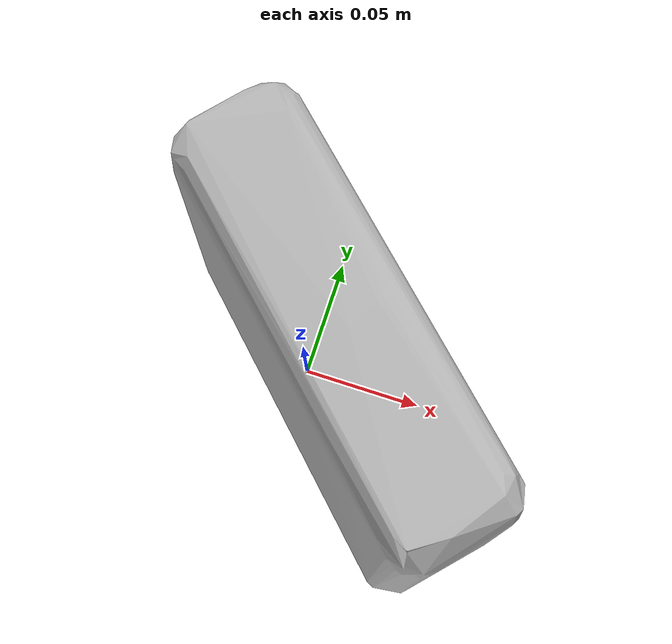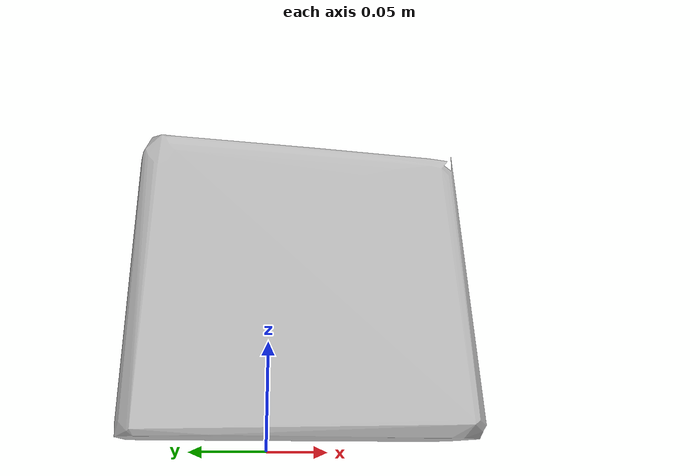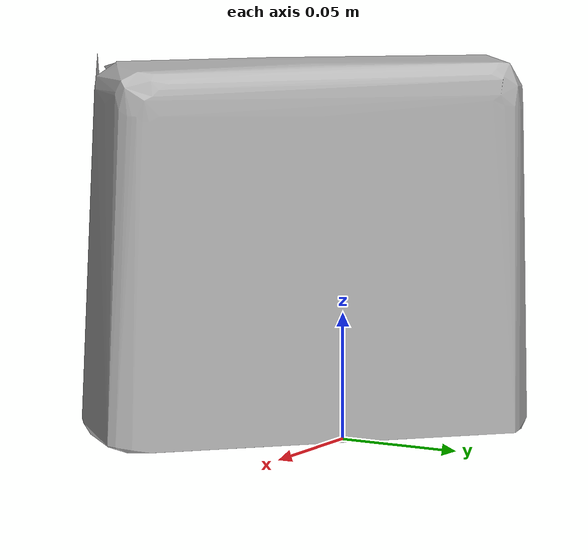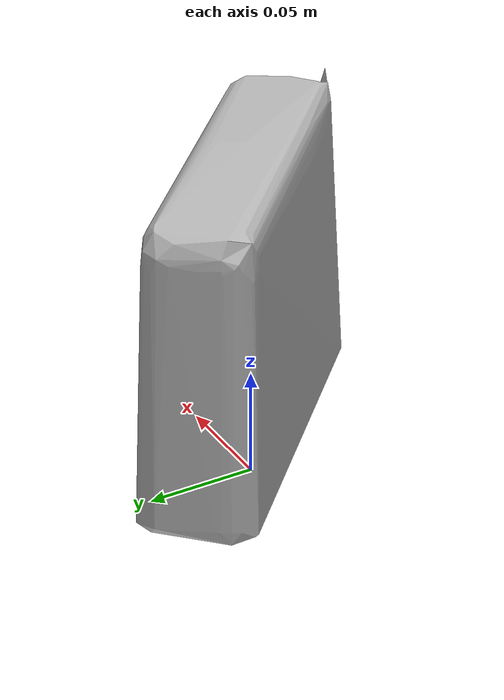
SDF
<?xml version='1.0'?>
<sdf version="1.4">
  <model name="clif_crunch_peanut_butter">
    <static>false</static>
    <link name="link">
      <inertial>
        <pose>0.018580703644843863 -0.006052318062895641 0.07492703331021226 1.5199474472983294 -0.0007070651853507363 -2.3366968888952737</pose>
        <mass>0.12031859818630702</mass>
        <inertia>
          <ixx>0.00046779555367562517</ixx>
          <ixy>-1.7355670626429508e-21</ixy>
          <ixz>-6.281667580489868e-21</ixz>
          <iyy>0.0002910781652889358</iyy>
          <iyz>1.2434365843405456e-22</iyz>
          <izz>0.00022929746959080794</izz>
        </inertia>
      </inertial>
      <collision name="collision">
        <geometry>
          <mesh>
            <!-- Use a downsampled mesh for collisions -->
            <uri>model:///clif_crunch_peanut_butter/clif_crunch_peanut_butter_250_collision.obj</uri>
	        </mesh>
        </geometry>
        <surface>
      </surface>
      </collision>
      <visual name="visual">
        <geometry>
          <mesh>
            <uri>model:///clif_crunch_peanut_butter/optimized_tsdf_texture_mapped_mesh.obj</uri>
	        </mesh>
        </geometry>
        <material>
          <script>
            <uri>model:///clif_crunch_peanut_butter/clif_crunch_peanut_butter.material</uri>
            <name>clif_crunch_peanut_butter</name>
          </script>
        </material>
      </visual>
    </link>
  </model>
</sdf>
